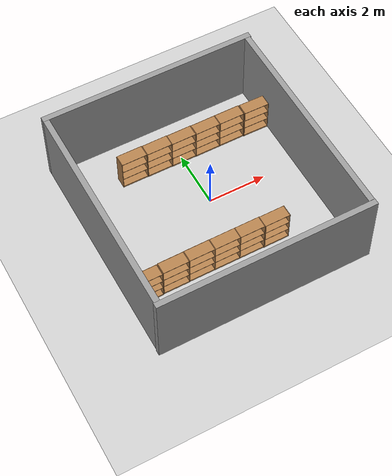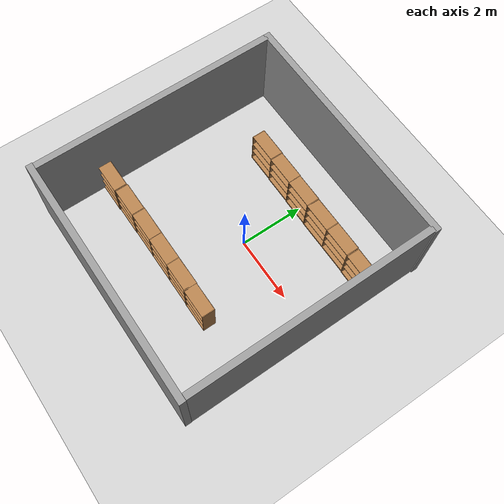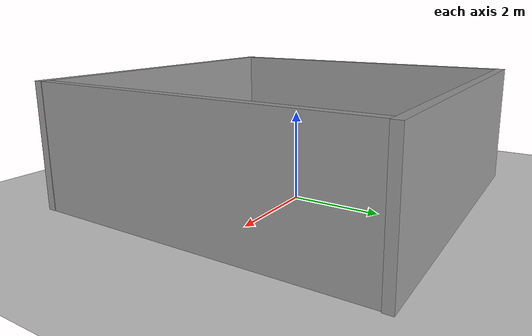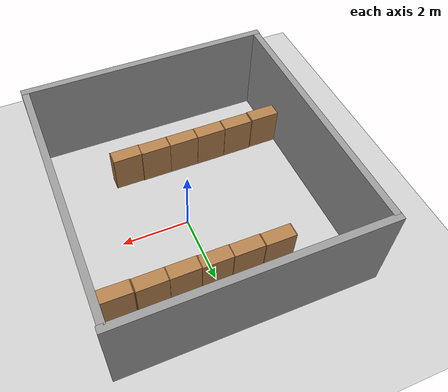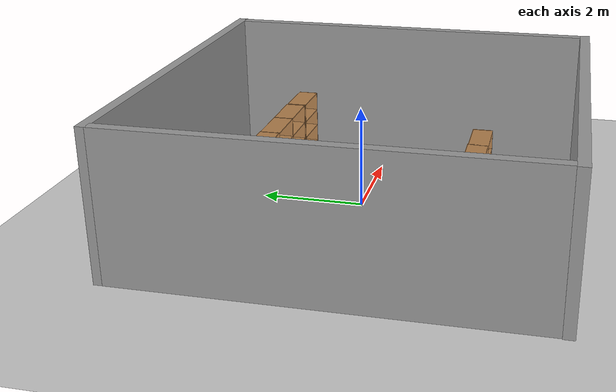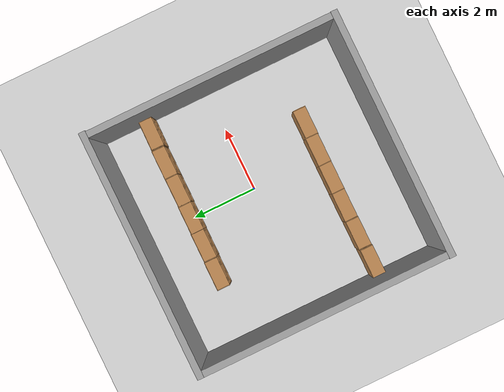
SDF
<sdf version="1.7">
 <world name="default">
  <scene><ambient>0.4 0.4 0.4 1</ambient><background>0.7 0.7 0.7 1</background><shadows>1</shadows></scene>
  <light name="sun" type="directional">
   <pose>0 0 10 0 -0 0</pose>
   <diffuse>0.8 0.8 0.8 1</diffuse>
   <specular>0.2 0.2 0.2 1</specular>
   <attenuation>
    <range>1000</range>
    <constant>0.9</constant>
    <linear>0.01</linear>
    <quadratic>0.001</quadratic>
   </attenuation>
   <direction>-0.5 0.1 -0.9</direction>
   <spot><inner_angle>0</inner_angle><outer_angle>0</outer_angle><falloff>0</falloff></spot>
  </light>
  <model name="ground_plane">
   <static>1</static>
   <link name="link">
    <collision name="collision">
     <geometry><plane><normal>0 0 1</normal><size>100 100</size></plane></geometry>
     <surface>
      <contact><collide_bitmask>65535</collide_bitmask></contact>
      <friction><ode><mu>100</mu><mu2>50</mu2></ode></friction>
     </surface>
    </collision>
    <visual name="visual">
     <cast_shadows>0</cast_shadows>
     <geometry><plane><normal>0 0 1</normal><size>100 100</size></plane></geometry>
     <material>
      <script><uri>file://media/materials/scripts/gazebo.material</uri><name>Gazebo/Grey</name></script>
     </material>
    </visual>
   </link>
  </model>
  <physics type="ode">
   <real_time_update_rate>1000</real_time_update_rate>
   <max_step_size>0.001</max_step_size>
   <real_time_factor>1</real_time_factor>
   <ode>
    <solver>
     <type>quick</type>
     <iters>150</iters>
     <precon_iters>0</precon_iters>
     <sor>1.4</sor>
     <use_dynamic_moi_rescaling>1</use_dynamic_moi_rescaling>
    </solver>
    <constraints>
     <cfm>1e-05</cfm>
     <erp>0.2</erp>
     <contact_max_correcting_vel>2000</contact_max_correcting_vel>
     <contact_surface_layer>0.01</contact_surface_layer>
    </constraints>
   </ode>
  </physics>
  <gravity>0 0 -9.8</gravity>
  <magnetic_field>6e-06 2.3e-05 -4.2e-05</magnetic_field>
  <atmosphere type="adiabatic"/>
  <spherical_coordinates>
   <surface_model>EARTH_WGS84</surface_model>
   <latitude_deg>0</latitude_deg>
   <longitude_deg>0</longitude_deg>
   <elevation>0</elevation>
   <heading_deg>0</heading_deg>
  </spherical_coordinates>
  <model name="grey_wall">
   <static>1</static>
   <link name="link">
    <pose>0 0 1.4 0 -0 0</pose>
    <collision name="collision"><geometry><box><size>7.5 0.2 2.8</size></box></geometry></collision>
    <visual name="visual">
     <cast_shadows>0</cast_shadows>
     <geometry><box><size>7.5 0.2 2.8</size></box></geometry>
     <material>
      <script>
       <uri>model://grey_wall/materials/scripts</uri>
       <uri>model://grey_wall/materials/textures</uri>
       <name>vrc/grey_wall</name>
      </script>
     </material>
    </visual>
   </link>
   <pose>-0.331436 -4.1134 0 0 -0 0</pose>
  </model>
  <model name="grey_wall_0">
   <static>1</static>
   <link name="link">
    <pose>0 0 1.4 0 -0 0</pose>
    <collision name="collision"><geometry><box><size>7.5 0.2 2.8</size></box></geometry></collision>
    <visual name="visual">
     <cast_shadows>0</cast_shadows>
     <geometry><box><size>7.5 0.2 2.8</size></box></geometry>
     <material>
      <script>
       <uri>model://grey_wall/materials/scripts</uri>
       <uri>model://grey_wall/materials/textures</uri>
       <name>vrc/grey_wall</name>
      </script>
     </material>
    </visual>
   </link>
   <pose>-0.323069 3.54386 0 0 -0 0</pose>
  </model>
  <model name="grey_wall_1">
   <static>1</static>
   <link name="link">
    <pose>0 0 1.4 0 -0 0</pose>
    <collision name="collision"><geometry><box><size>7.5 0.2 2.8</size></box></geometry></collision>
    <visual name="visual">
     <cast_shadows>0</cast_shadows>
     <geometry><box><size>7.5 0.2 2.8</size></box></geometry>
     <material>
      <script>
       <uri>model://grey_wall/materials/scripts</uri>
       <uri>model://grey_wall/materials/textures</uri>
       <name>vrc/grey_wall</name>
      </script>
     </material>
    </visual>
   </link>
   <pose>-3.96793 -0.268224 0 0 0 -1.56896</pose>
  </model>
  <model name="grey_wall_1_clone">
   <static>1</static>
   <link name="link">
    <pose>0 0 1.4 0 -0 0</pose>
    <collision name="collision"><geometry><box><size>7.5 0.2 2.8</size></box></geometry></collision>
    <visual name="visual">
     <cast_shadows>0</cast_shadows>
     <geometry><box><size>7.5 0.2 2.8</size></box></geometry>
     <material>
      <script>
       <uri>model://grey_wall/materials/scripts</uri>
       <uri>model://grey_wall/materials/textures</uri>
       <name>vrc/grey_wall</name>
      </script>
     </material>
    </visual>
   </link>
   <pose>3.30277 -0.260481 0 0 0 -1.56896</pose>
  </model>
  <model name="bookshelf">
   <static>1</static>
   <link name="link">
    <inertial><mass>1</mass></inertial>
    <collision name="back">
     <pose>0 0.005 0.6 0 -0 0</pose>
     <geometry><box><size>0.9 0.01 1.2</size></box></geometry>
    </collision>
    <visual name="visual1">
     <pose>0 0.005 0.6 0 -0 0</pose>
     <geometry><box><size>0.9 0.01 1.2</size></box></geometry>
     <material>
      <script><uri>file://media/materials/scripts/gazebo.material</uri><name>Gazebo/Wood</name></script>
     </material>
    </visual>
    <collision name="left_side">
     <pose>0.45 -0.195 0.6 0 -0 0</pose>
     <geometry><box><size>0.02 0.4 1.2</size></box></geometry>
    </collision>
    <visual name="visual2">
     <pose>0.45 -0.195 0.6 0 -0 0</pose>
     <geometry><box><size>0.02 0.4 1.2</size></box></geometry>
     <material>
      <script><uri>file://media/materials/scripts/gazebo.material</uri><name>Gazebo/Wood</name></script>
     </material>
    </visual>
    <collision name="right_side">
     <pose>-0.45 -0.195 0.6 0 -0 0</pose>
     <geometry><box><size>0.02 0.4 1.2</size></box></geometry>
    </collision>
    <visual name="visual3">
     <pose>-0.45 -0.195 0.6 0 -0 0</pose>
     <geometry><box><size>0.02 0.4 1.2</size></box></geometry>
     <material>
      <script><uri>file://media/materials/scripts/gazebo.material</uri><name>Gazebo/Wood</name></script>
     </material>
    </visual>
    <collision name="bottom">
     <pose>0 -0.195 0.03 0 -0 0</pose>
     <geometry><box><size>0.88 0.4 0.06</size></box></geometry>
    </collision>
    <visual name="visual4">
     <pose>0 -0.195 0.03 0 -0 0</pose>
     <geometry><box><size>0.88 0.4 0.06</size></box></geometry>
     <material>
      <script><uri>file://media/materials/scripts/gazebo.material</uri><name>Gazebo/Wood</name></script>
     </material>
    </visual>
    <collision name="top">
     <pose>0 -0.195 1.19 0 -0 0</pose>
     <geometry><box><size>0.88 0.4 0.02</size></box></geometry>
    </collision>
    <visual name="visual5">
     <pose>0 -0.195 1.19 0 -0 0</pose>
     <geometry><box><size>0.88 0.4 0.02</size></box></geometry>
     <material>
      <script><uri>file://media/materials/scripts/gazebo.material</uri><name>Gazebo/Wood</name></script>
     </material>
    </visual>
    <collision name="low_shelf">
     <pose>0 -0.195 0.43 0 -0 0</pose>
     <geometry><box><size>0.88 0.4 0.02</size></box></geometry>
    </collision>
    <visual name="visual6">
     <pose>0 -0.195 0.43 0 -0 0</pose>
     <geometry><box><size>0.88 0.4 0.02</size></box></geometry>
     <material>
      <script><uri>file://media/materials/scripts/gazebo.material</uri><name>Gazebo/Wood</name></script>
     </material>
    </visual>
    <collision name="high_shelf">
     <pose>0 -0.195 0.8 0 -0 0</pose>
     <geometry><box><size>0.88 0.4 0.02</size></box></geometry>
    </collision>
    <visual name="visual7">
     <pose>0 -0.195 0.8 0 -0 0</pose>
     <geometry><box><size>0.88 0.4 0.02</size></box></geometry>
     <material>
      <script><uri>file://media/materials/scripts/gazebo.material</uri><name>Gazebo/Wood</name></script>
     </material>
    </visual>
   </link>
   <pose>-3.42642 -2.01933 0 0 -0 0</pose>
  </model>
  <model name="bookshelf_clone">
   <static>1</static>
   <link name="link">
    <inertial><mass>1</mass></inertial>
    <collision name="back">
     <pose>0 0.005 0.6 0 -0 0</pose>
     <geometry><box><size>0.9 0.01 1.2</size></box></geometry>
    </collision>
    <visual name="visual1">
     <pose>0 0.005 0.6 0 -0 0</pose>
     <geometry><box><size>0.9 0.01 1.2</size></box></geometry>
     <material>
      <script><uri>file://media/materials/scripts/gazebo.material</uri><name>Gazebo/Wood</name></script>
     </material>
    </visual>
    <collision name="left_side">
     <pose>0.45 -0.195 0.6 0 -0 0</pose>
     <geometry><box><size>0.02 0.4 1.2</size></box></geometry>
    </collision>
    <visual name="visual2">
     <pose>0.45 -0.195 0.6 0 -0 0</pose>
     <geometry><box><size>0.02 0.4 1.2</size></box></geometry>
     <material>
      <script><uri>file://media/materials/scripts/gazebo.material</uri><name>Gazebo/Wood</name></script>
     </material>
    </visual>
    <collision name="right_side">
     <pose>-0.45 -0.195 0.6 0 -0 0</pose>
     <geometry><box><size>0.02 0.4 1.2</size></box></geometry>
    </collision>
    <visual name="visual3">
     <pose>-0.45 -0.195 0.6 0 -0 0</pose>
     <geometry><box><size>0.02 0.4 1.2</size></box></geometry>
     <material>
      <script><uri>file://media/materials/scripts/gazebo.material</uri><name>Gazebo/Wood</name></script>
     </material>
    </visual>
    <collision name="bottom">
     <pose>0 -0.195 0.03 0 -0 0</pose>
     <geometry><box><size>0.88 0.4 0.06</size></box></geometry>
    </collision>
    <visual name="visual4">
     <pose>0 -0.195 0.03 0 -0 0</pose>
     <geometry><box><size>0.88 0.4 0.06</size></box></geometry>
     <material>
      <script><uri>file://media/materials/scripts/gazebo.material</uri><name>Gazebo/Wood</name></script>
     </material>
    </visual>
    <collision name="top">
     <pose>0 -0.195 1.19 0 -0 0</pose>
     <geometry><box><size>0.88 0.4 0.02</size></box></geometry>
    </collision>
    <visual name="visual5">
     <pose>0 -0.195 1.19 0 -0 0</pose>
     <geometry><box><size>0.88 0.4 0.02</size></box></geometry>
     <material>
      <script><uri>file://media/materials/scripts/gazebo.material</uri><name>Gazebo/Wood</name></script>
     </material>
    </visual>
    <collision name="low_shelf">
     <pose>0 -0.195 0.43 0 -0 0</pose>
     <geometry><box><size>0.88 0.4 0.02</size></box></geometry>
    </collision>
    <visual name="visual6">
     <pose>0 -0.195 0.43 0 -0 0</pose>
     <geometry><box><size>0.88 0.4 0.02</size></box></geometry>
     <material>
      <script><uri>file://media/materials/scripts/gazebo.material</uri><name>Gazebo/Wood</name></script>
     </material>
    </visual>
    <collision name="high_shelf">
     <pose>0 -0.195 0.8 0 -0 0</pose>
     <geometry><box><size>0.88 0.4 0.02</size></box></geometry>
    </collision>
    <visual name="visual7">
     <pose>0 -0.195 0.8 0 -0 0</pose>
     <geometry><box><size>0.88 0.4 0.02</size></box></geometry>
     <material>
      <script><uri>file://media/materials/scripts/gazebo.material</uri><name>Gazebo/Wood</name></script>
     </material>
    </visual>
   </link>
   <pose>-2.49846 -2.00086 0 0 -0 0</pose>
  </model>
  <model name="bookshelf_clone_0">
   <static>1</static>
   <link name="link">
    <inertial><mass>1</mass></inertial>
    <collision name="back">
     <pose>0 0.005 0.6 0 -0 0</pose>
     <geometry><box><size>0.9 0.01 1.2</size></box></geometry>
    </collision>
    <visual name="visual1">
     <pose>0 0.005 0.6 0 -0 0</pose>
     <geometry><box><size>0.9 0.01 1.2</size></box></geometry>
     <material>
      <script><uri>file://media/materials/scripts/gazebo.material</uri><name>Gazebo/Wood</name></script>
     </material>
    </visual>
    <collision name="left_side">
     <pose>0.45 -0.195 0.6 0 -0 0</pose>
     <geometry><box><size>0.02 0.4 1.2</size></box></geometry>
    </collision>
    <visual name="visual2">
     <pose>0.45 -0.195 0.6 0 -0 0</pose>
     <geometry><box><size>0.02 0.4 1.2</size></box></geometry>
     <material>
      <script><uri>file://media/materials/scripts/gazebo.material</uri><name>Gazebo/Wood</name></script>
     </material>
    </visual>
    <collision name="right_side">
     <pose>-0.45 -0.195 0.6 0 -0 0</pose>
     <geometry><box><size>0.02 0.4 1.2</size></box></geometry>
    </collision>
    <visual name="visual3">
     <pose>-0.45 -0.195 0.6 0 -0 0</pose>
     <geometry><box><size>0.02 0.4 1.2</size></box></geometry>
     <material>
      <script><uri>file://media/materials/scripts/gazebo.material</uri><name>Gazebo/Wood</name></script>
     </material>
    </visual>
    <collision name="bottom">
     <pose>0 -0.195 0.03 0 -0 0</pose>
     <geometry><box><size>0.88 0.4 0.06</size></box></geometry>
    </collision>
    <visual name="visual4">
     <pose>0 -0.195 0.03 0 -0 0</pose>
     <geometry><box><size>0.88 0.4 0.06</size></box></geometry>
     <material>
      <script><uri>file://media/materials/scripts/gazebo.material</uri><name>Gazebo/Wood</name></script>
     </material>
    </visual>
    <collision name="top">
     <pose>0 -0.195 1.19 0 -0 0</pose>
     <geometry><box><size>0.88 0.4 0.02</size></box></geometry>
    </collision>
    <visual name="visual5">
     <pose>0 -0.195 1.19 0 -0 0</pose>
     <geometry><box><size>0.88 0.4 0.02</size></box></geometry>
     <material>
      <script><uri>file://media/materials/scripts/gazebo.material</uri><name>Gazebo/Wood</name></script>
     </material>
    </visual>
    <collision name="low_shelf">
     <pose>0 -0.195 0.43 0 -0 0</pose>
     <geometry><box><size>0.88 0.4 0.02</size></box></geometry>
    </collision>
    <visual name="visual6">
     <pose>0 -0.195 0.43 0 -0 0</pose>
     <geometry><box><size>0.88 0.4 0.02</size></box></geometry>
     <material>
      <script><uri>file://media/materials/scripts/gazebo.material</uri><name>Gazebo/Wood</name></script>
     </material>
    </visual>
    <collision name="high_shelf">
     <pose>0 -0.195 0.8 0 -0 0</pose>
     <geometry><box><size>0.88 0.4 0.02</size></box></geometry>
    </collision>
    <visual name="visual7">
     <pose>0 -0.195 0.8 0 -0 0</pose>
     <geometry><box><size>0.88 0.4 0.02</size></box></geometry>
     <material>
      <script><uri>file://media/materials/scripts/gazebo.material</uri><name>Gazebo/Wood</name></script>
     </material>
    </visual>
   </link>
   <pose>-1.58809 -1.99355 0 0 -0 0</pose>
  </model>
  <model name="bookshelf_clone_1">
   <static>1</static>
   <link name="link">
    <inertial><mass>1</mass></inertial>
    <collision name="back">
     <pose>0 0.005 0.6 0 -0 0</pose>
     <geometry><box><size>0.9 0.01 1.2</size></box></geometry>
    </collision>
    <visual name="visual1">
     <pose>0 0.005 0.6 0 -0 0</pose>
     <geometry><box><size>0.9 0.01 1.2</size></box></geometry>
     <material>
      <script><uri>file://media/materials/scripts/gazebo.material</uri><name>Gazebo/Wood</name></script>
     </material>
    </visual>
    <collision name="left_side">
     <pose>0.45 -0.195 0.6 0 -0 0</pose>
     <geometry><box><size>0.02 0.4 1.2</size></box></geometry>
    </collision>
    <visual name="visual2">
     <pose>0.45 -0.195 0.6 0 -0 0</pose>
     <geometry><box><size>0.02 0.4 1.2</size></box></geometry>
     <material>
      <script><uri>file://media/materials/scripts/gazebo.material</uri><name>Gazebo/Wood</name></script>
     </material>
    </visual>
    <collision name="right_side">
     <pose>-0.45 -0.195 0.6 0 -0 0</pose>
     <geometry><box><size>0.02 0.4 1.2</size></box></geometry>
    </collision>
    <visual name="visual3">
     <pose>-0.45 -0.195 0.6 0 -0 0</pose>
     <geometry><box><size>0.02 0.4 1.2</size></box></geometry>
     <material>
      <script><uri>file://media/materials/scripts/gazebo.material</uri><name>Gazebo/Wood</name></script>
     </material>
    </visual>
    <collision name="bottom">
     <pose>0 -0.195 0.03 0 -0 0</pose>
     <geometry><box><size>0.88 0.4 0.06</size></box></geometry>
    </collision>
    <visual name="visual4">
     <pose>0 -0.195 0.03 0 -0 0</pose>
     <geometry><box><size>0.88 0.4 0.06</size></box></geometry>
     <material>
      <script><uri>file://media/materials/scripts/gazebo.material</uri><name>Gazebo/Wood</name></script>
     </material>
    </visual>
    <collision name="top">
     <pose>0 -0.195 1.19 0 -0 0</pose>
     <geometry><box><size>0.88 0.4 0.02</size></box></geometry>
    </collision>
    <visual name="visual5">
     <pose>0 -0.195 1.19 0 -0 0</pose>
     <geometry><box><size>0.88 0.4 0.02</size></box></geometry>
     <material>
      <script><uri>file://media/materials/scripts/gazebo.material</uri><name>Gazebo/Wood</name></script>
     </material>
    </visual>
    <collision name="low_shelf">
     <pose>0 -0.195 0.43 0 -0 0</pose>
     <geometry><box><size>0.88 0.4 0.02</size></box></geometry>
    </collision>
    <visual name="visual6">
     <pose>0 -0.195 0.43 0 -0 0</pose>
     <geometry><box><size>0.88 0.4 0.02</size></box></geometry>
     <material>
      <script><uri>file://media/materials/scripts/gazebo.material</uri><name>Gazebo/Wood</name></script>
     </material>
    </visual>
    <collision name="high_shelf">
     <pose>0 -0.195 0.8 0 -0 0</pose>
     <geometry><box><size>0.88 0.4 0.02</size></box></geometry>
    </collision>
    <visual name="visual7">
     <pose>0 -0.195 0.8 0 -0 0</pose>
     <geometry><box><size>0.88 0.4 0.02</size></box></geometry>
     <material>
      <script><uri>file://media/materials/scripts/gazebo.material</uri><name>Gazebo/Wood</name></script>
     </material>
    </visual>
   </link>
   <pose>-0.694954 -1.99694 0 0 -0 0</pose>
  </model>
  <model name="bookshelf_clone_2">
   <static>1</static>
   <link name="link">
    <inertial><mass>1</mass></inertial>
    <collision name="back">
     <pose>0 0.005 0.6 0 -0 0</pose>
     <geometry><box><size>0.9 0.01 1.2</size></box></geometry>
    </collision>
    <visual name="visual1">
     <pose>0 0.005 0.6 0 -0 0</pose>
     <geometry><box><size>0.9 0.01 1.2</size></box></geometry>
     <material>
      <script><uri>file://media/materials/scripts/gazebo.material</uri><name>Gazebo/Wood</name></script>
     </material>
    </visual>
    <collision name="left_side">
     <pose>0.45 -0.195 0.6 0 -0 0</pose>
     <geometry><box><size>0.02 0.4 1.2</size></box></geometry>
    </collision>
    <visual name="visual2">
     <pose>0.45 -0.195 0.6 0 -0 0</pose>
     <geometry><box><size>0.02 0.4 1.2</size></box></geometry>
     <material>
      <script><uri>file://media/materials/scripts/gazebo.material</uri><name>Gazebo/Wood</name></script>
     </material>
    </visual>
    <collision name="right_side">
     <pose>-0.45 -0.195 0.6 0 -0 0</pose>
     <geometry><box><size>0.02 0.4 1.2</size></box></geometry>
    </collision>
    <visual name="visual3">
     <pose>-0.45 -0.195 0.6 0 -0 0</pose>
     <geometry><box><size>0.02 0.4 1.2</size></box></geometry>
     <material>
      <script><uri>file://media/materials/scripts/gazebo.material</uri><name>Gazebo/Wood</name></script>
     </material>
    </visual>
    <collision name="bottom">
     <pose>0 -0.195 0.03 0 -0 0</pose>
     <geometry><box><size>0.88 0.4 0.06</size></box></geometry>
    </collision>
    <visual name="visual4">
     <pose>0 -0.195 0.03 0 -0 0</pose>
     <geometry><box><size>0.88 0.4 0.06</size></box></geometry>
     <material>
      <script><uri>file://media/materials/scripts/gazebo.material</uri><name>Gazebo/Wood</name></script>
     </material>
    </visual>
    <collision name="top">
     <pose>0 -0.195 1.19 0 -0 0</pose>
     <geometry><box><size>0.88 0.4 0.02</size></box></geometry>
    </collision>
    <visual name="visual5">
     <pose>0 -0.195 1.19 0 -0 0</pose>
     <geometry><box><size>0.88 0.4 0.02</size></box></geometry>
     <material>
      <script><uri>file://media/materials/scripts/gazebo.material</uri><name>Gazebo/Wood</name></script>
     </material>
    </visual>
    <collision name="low_shelf">
     <pose>0 -0.195 0.43 0 -0 0</pose>
     <geometry><box><size>0.88 0.4 0.02</size></box></geometry>
    </collision>
    <visual name="visual6">
     <pose>0 -0.195 0.43 0 -0 0</pose>
     <geometry><box><size>0.88 0.4 0.02</size></box></geometry>
     <material>
      <script><uri>file://media/materials/scripts/gazebo.material</uri><name>Gazebo/Wood</name></script>
     </material>
    </visual>
    <collision name="high_shelf">
     <pose>0 -0.195 0.8 0 -0 0</pose>
     <geometry><box><size>0.88 0.4 0.02</size></box></geometry>
    </collision>
    <visual name="visual7">
     <pose>0 -0.195 0.8 0 -0 0</pose>
     <geometry><box><size>0.88 0.4 0.02</size></box></geometry>
     <material>
      <script><uri>file://media/materials/scripts/gazebo.material</uri><name>Gazebo/Wood</name></script>
     </material>
    </visual>
   </link>
   <pose>0.203312 -1.99867 0 0 -0 0</pose>
  </model>
  <model name="bookshelf_clone_3">
   <static>1</static>
   <link name="link">
    <inertial><mass>1</mass></inertial>
    <collision name="back">
     <pose>0 0.005 0.6 0 -0 0</pose>
     <geometry><box><size>0.9 0.01 1.2</size></box></geometry>
    </collision>
    <visual name="visual1">
     <pose>0 0.005 0.6 0 -0 0</pose>
     <geometry><box><size>0.9 0.01 1.2</size></box></geometry>
     <material>
      <script><uri>file://media/materials/scripts/gazebo.material</uri><name>Gazebo/Wood</name></script>
     </material>
    </visual>
    <collision name="left_side">
     <pose>0.45 -0.195 0.6 0 -0 0</pose>
     <geometry><box><size>0.02 0.4 1.2</size></box></geometry>
    </collision>
    <visual name="visual2">
     <pose>0.45 -0.195 0.6 0 -0 0</pose>
     <geometry><box><size>0.02 0.4 1.2</size></box></geometry>
     <material>
      <script><uri>file://media/materials/scripts/gazebo.material</uri><name>Gazebo/Wood</name></script>
     </material>
    </visual>
    <collision name="right_side">
     <pose>-0.45 -0.195 0.6 0 -0 0</pose>
     <geometry><box><size>0.02 0.4 1.2</size></box></geometry>
    </collision>
    <visual name="visual3">
     <pose>-0.45 -0.195 0.6 0 -0 0</pose>
     <geometry><box><size>0.02 0.4 1.2</size></box></geometry>
     <material>
      <script><uri>file://media/materials/scripts/gazebo.material</uri><name>Gazebo/Wood</name></script>
     </material>
    </visual>
    <collision name="bottom">
     <pose>0 -0.195 0.03 0 -0 0</pose>
     <geometry><box><size>0.88 0.4 0.06</size></box></geometry>
    </collision>
    <visual name="visual4">
     <pose>0 -0.195 0.03 0 -0 0</pose>
     <geometry><box><size>0.88 0.4 0.06</size></box></geometry>
     <material>
      <script><uri>file://media/materials/scripts/gazebo.material</uri><name>Gazebo/Wood</name></script>
     </material>
    </visual>
    <collision name="top">
     <pose>0 -0.195 1.19 0 -0 0</pose>
     <geometry><box><size>0.88 0.4 0.02</size></box></geometry>
    </collision>
    <visual name="visual5">
     <pose>0 -0.195 1.19 0 -0 0</pose>
     <geometry><box><size>0.88 0.4 0.02</size></box></geometry>
     <material>
      <script><uri>file://media/materials/scripts/gazebo.material</uri><name>Gazebo/Wood</name></script>
     </material>
    </visual>
    <collision name="low_shelf">
     <pose>0 -0.195 0.43 0 -0 0</pose>
     <geometry><box><size>0.88 0.4 0.02</size></box></geometry>
    </collision>
    <visual name="visual6">
     <pose>0 -0.195 0.43 0 -0 0</pose>
     <geometry><box><size>0.88 0.4 0.02</size></box></geometry>
     <material>
      <script><uri>file://media/materials/scripts/gazebo.material</uri><name>Gazebo/Wood</name></script>
     </material>
    </visual>
    <collision name="high_shelf">
     <pose>0 -0.195 0.8 0 -0 0</pose>
     <geometry><box><size>0.88 0.4 0.02</size></box></geometry>
    </collision>
    <visual name="visual7">
     <pose>0 -0.195 0.8 0 -0 0</pose>
     <geometry><box><size>0.88 0.4 0.02</size></box></geometry>
     <material>
      <script><uri>file://media/materials/scripts/gazebo.material</uri><name>Gazebo/Wood</name></script>
     </material>
    </visual>
   </link>
   <pose>1.07279 -2.01098 0 0 -0 0</pose>
  </model>
  <model name="bookshelf_clone_4">
   <static>1</static>
   <link name="link">
    <inertial><mass>1</mass></inertial>
    <collision name="back">
     <pose>0 0.005 0.6 0 -0 0</pose>
     <geometry><box><size>0.9 0.01 1.2</size></box></geometry>
    </collision>
    <visual name="visual1">
     <pose>0 0.005 0.6 0 -0 0</pose>
     <geometry><box><size>0.9 0.01 1.2</size></box></geometry>
     <material>
      <script><uri>file://media/materials/scripts/gazebo.material</uri><name>Gazebo/Wood</name></script>
     </material>
    </visual>
    <collision name="left_side">
     <pose>0.45 -0.195 0.6 0 -0 0</pose>
     <geometry><box><size>0.02 0.4 1.2</size></box></geometry>
    </collision>
    <visual name="visual2">
     <pose>0.45 -0.195 0.6 0 -0 0</pose>
     <geometry><box><size>0.02 0.4 1.2</size></box></geometry>
     <material>
      <script><uri>file://media/materials/scripts/gazebo.material</uri><name>Gazebo/Wood</name></script>
     </material>
    </visual>
    <collision name="right_side">
     <pose>-0.45 -0.195 0.6 0 -0 0</pose>
     <geometry><box><size>0.02 0.4 1.2</size></box></geometry>
    </collision>
    <visual name="visual3">
     <pose>-0.45 -0.195 0.6 0 -0 0</pose>
     <geometry><box><size>0.02 0.4 1.2</size></box></geometry>
     <material>
      <script><uri>file://media/materials/scripts/gazebo.material</uri><name>Gazebo/Wood</name></script>
     </material>
    </visual>
    <collision name="bottom">
     <pose>0 -0.195 0.03 0 -0 0</pose>
     <geometry><box><size>0.88 0.4 0.06</size></box></geometry>
    </collision>
    <visual name="visual4">
     <pose>0 -0.195 0.03 0 -0 0</pose>
     <geometry><box><size>0.88 0.4 0.06</size></box></geometry>
     <material>
      <script><uri>file://media/materials/scripts/gazebo.material</uri><name>Gazebo/Wood</name></script>
     </material>
    </visual>
    <collision name="top">
     <pose>0 -0.195 1.19 0 -0 0</pose>
     <geometry><box><size>0.88 0.4 0.02</size></box></geometry>
    </collision>
    <visual name="visual5">
     <pose>0 -0.195 1.19 0 -0 0</pose>
     <geometry><box><size>0.88 0.4 0.02</size></box></geometry>
     <material>
      <script><uri>file://media/materials/scripts/gazebo.material</uri><name>Gazebo/Wood</name></script>
     </material>
    </visual>
    <collision name="low_shelf">
     <pose>0 -0.195 0.43 0 -0 0</pose>
     <geometry><box><size>0.88 0.4 0.02</size></box></geometry>
    </collision>
    <visual name="visual6">
     <pose>0 -0.195 0.43 0 -0 0</pose>
     <geometry><box><size>0.88 0.4 0.02</size></box></geometry>
     <material>
      <script><uri>file://media/materials/scripts/gazebo.material</uri><name>Gazebo/Wood</name></script>
     </material>
    </visual>
    <collision name="high_shelf">
     <pose>0 -0.195 0.8 0 -0 0</pose>
     <geometry><box><size>0.88 0.4 0.02</size></box></geometry>
    </collision>
    <visual name="visual7">
     <pose>0 -0.195 0.8 0 -0 0</pose>
     <geometry><box><size>0.88 0.4 0.02</size></box></geometry>
     <material>
      <script><uri>file://media/materials/scripts/gazebo.material</uri><name>Gazebo/Wood</name></script>
     </material>
    </visual>
   </link>
   <pose>2.75328 2.18049 0 0 -0 -0.015834</pose>
  </model>
  <model name="bookshelf_clone_5">
   <static>1</static>
   <link name="link">
    <inertial><mass>1</mass></inertial>
    <collision name="back">
     <pose>0 0.005 0.6 0 -0 0</pose>
     <geometry><box><size>0.9 0.01 1.2</size></box></geometry>
    </collision>
    <visual name="visual1">
     <pose>0 0.005 0.6 0 -0 0</pose>
     <geometry><box><size>0.9 0.01 1.2</size></box></geometry>
     <material>
      <script><uri>file://media/materials/scripts/gazebo.material</uri><name>Gazebo/Wood</name></script>
     </material>
    </visual>
    <collision name="left_side">
     <pose>0.45 -0.195 0.6 0 -0 0</pose>
     <geometry><box><size>0.02 0.4 1.2</size></box></geometry>
    </collision>
    <visual name="visual2">
     <pose>0.45 -0.195 0.6 0 -0 0</pose>
     <geometry><box><size>0.02 0.4 1.2</size></box></geometry>
     <material>
      <script><uri>file://media/materials/scripts/gazebo.material</uri><name>Gazebo/Wood</name></script>
     </material>
    </visual>
    <collision name="right_side">
     <pose>-0.45 -0.195 0.6 0 -0 0</pose>
     <geometry><box><size>0.02 0.4 1.2</size></box></geometry>
    </collision>
    <visual name="visual3">
     <pose>-0.45 -0.195 0.6 0 -0 0</pose>
     <geometry><box><size>0.02 0.4 1.2</size></box></geometry>
     <material>
      <script><uri>file://media/materials/scripts/gazebo.material</uri><name>Gazebo/Wood</name></script>
     </material>
    </visual>
    <collision name="bottom">
     <pose>0 -0.195 0.03 0 -0 0</pose>
     <geometry><box><size>0.88 0.4 0.06</size></box></geometry>
    </collision>
    <visual name="visual4">
     <pose>0 -0.195 0.03 0 -0 0</pose>
     <geometry><box><size>0.88 0.4 0.06</size></box></geometry>
     <material>
      <script><uri>file://media/materials/scripts/gazebo.material</uri><name>Gazebo/Wood</name></script>
     </material>
    </visual>
    <collision name="top">
     <pose>0 -0.195 1.19 0 -0 0</pose>
     <geometry><box><size>0.88 0.4 0.02</size></box></geometry>
    </collision>
    <visual name="visual5">
     <pose>0 -0.195 1.19 0 -0 0</pose>
     <geometry><box><size>0.88 0.4 0.02</size></box></geometry>
     <material>
      <script><uri>file://media/materials/scripts/gazebo.material</uri><name>Gazebo/Wood</name></script>
     </material>
    </visual>
    <collision name="low_shelf">
     <pose>0 -0.195 0.43 0 -0 0</pose>
     <geometry><box><size>0.88 0.4 0.02</size></box></geometry>
    </collision>
    <visual name="visual6">
     <pose>0 -0.195 0.43 0 -0 0</pose>
     <geometry><box><size>0.88 0.4 0.02</size></box></geometry>
     <material>
      <script><uri>file://media/materials/scripts/gazebo.material</uri><name>Gazebo/Wood</name></script>
     </material>
    </visual>
    <collision name="high_shelf">
     <pose>0 -0.195 0.8 0 -0 0</pose>
     <geometry><box><size>0.88 0.4 0.02</size></box></geometry>
    </collision>
    <visual name="visual7">
     <pose>0 -0.195 0.8 0 -0 0</pose>
     <geometry><box><size>0.88 0.4 0.02</size></box></geometry>
     <material>
      <script><uri>file://media/materials/scripts/gazebo.material</uri><name>Gazebo/Wood</name></script>
     </material>
    </visual>
   </link>
   <pose>1.82089 2.20164 0 0 -0 0</pose>
  </model>
  <model name="bookshelf_clone_6">
   <static>1</static>
   <link name="link">
    <inertial><mass>1</mass></inertial>
    <collision name="back">
     <pose>0 0.005 0.6 0 -0 0</pose>
     <geometry><box><size>0.9 0.01 1.2</size></box></geometry>
    </collision>
    <visual name="visual1">
     <pose>0 0.005 0.6 0 -0 0</pose>
     <geometry><box><size>0.9 0.01 1.2</size></box></geometry>
     <material>
      <script><uri>file://media/materials/scripts/gazebo.material</uri><name>Gazebo/Wood</name></script>
     </material>
    </visual>
    <collision name="left_side">
     <pose>0.45 -0.195 0.6 0 -0 0</pose>
     <geometry><box><size>0.02 0.4 1.2</size></box></geometry>
    </collision>
    <visual name="visual2">
     <pose>0.45 -0.195 0.6 0 -0 0</pose>
     <geometry><box><size>0.02 0.4 1.2</size></box></geometry>
     <material>
      <script><uri>file://media/materials/scripts/gazebo.material</uri><name>Gazebo/Wood</name></script>
     </material>
    </visual>
    <collision name="right_side">
     <pose>-0.45 -0.195 0.6 0 -0 0</pose>
     <geometry><box><size>0.02 0.4 1.2</size></box></geometry>
    </collision>
    <visual name="visual3">
     <pose>-0.45 -0.195 0.6 0 -0 0</pose>
     <geometry><box><size>0.02 0.4 1.2</size></box></geometry>
     <material>
      <script><uri>file://media/materials/scripts/gazebo.material</uri><name>Gazebo/Wood</name></script>
     </material>
    </visual>
    <collision name="bottom">
     <pose>0 -0.195 0.03 0 -0 0</pose>
     <geometry><box><size>0.88 0.4 0.06</size></box></geometry>
    </collision>
    <visual name="visual4">
     <pose>0 -0.195 0.03 0 -0 0</pose>
     <geometry><box><size>0.88 0.4 0.06</size></box></geometry>
     <material>
      <script><uri>file://media/materials/scripts/gazebo.material</uri><name>Gazebo/Wood</name></script>
     </material>
    </visual>
    <collision name="top">
     <pose>0 -0.195 1.19 0 -0 0</pose>
     <geometry><box><size>0.88 0.4 0.02</size></box></geometry>
    </collision>
    <visual name="visual5">
     <pose>0 -0.195 1.19 0 -0 0</pose>
     <geometry><box><size>0.88 0.4 0.02</size></box></geometry>
     <material>
      <script><uri>file://media/materials/scripts/gazebo.material</uri><name>Gazebo/Wood</name></script>
     </material>
    </visual>
    <collision name="low_shelf">
     <pose>0 -0.195 0.43 0 -0 0</pose>
     <geometry><box><size>0.88 0.4 0.02</size></box></geometry>
    </collision>
    <visual name="visual6">
     <pose>0 -0.195 0.43 0 -0 0</pose>
     <geometry><box><size>0.88 0.4 0.02</size></box></geometry>
     <material>
      <script><uri>file://media/materials/scripts/gazebo.material</uri><name>Gazebo/Wood</name></script>
     </material>
    </visual>
    <collision name="high_shelf">
     <pose>0 -0.195 0.8 0 -0 0</pose>
     <geometry><box><size>0.88 0.4 0.02</size></box></geometry>
    </collision>
    <visual name="visual7">
     <pose>0 -0.195 0.8 0 -0 0</pose>
     <geometry><box><size>0.88 0.4 0.02</size></box></geometry>
     <material>
      <script><uri>file://media/materials/scripts/gazebo.material</uri><name>Gazebo/Wood</name></script>
     </material>
    </visual>
   </link>
   <pose>0.916009 2.20195 0 0 -0 0</pose>
  </model>
  <model name="bookshelf_clone_6_clone">
   <static>1</static>
   <link name="link">
    <inertial><mass>1</mass></inertial>
    <collision name="back">
     <pose>0 0.005 0.6 0 -0 0</pose>
     <geometry><box><size>0.9 0.01 1.2</size></box></geometry>
    </collision>
    <visual name="visual1">
     <pose>0 0.005 0.6 0 -0 0</pose>
     <geometry><box><size>0.9 0.01 1.2</size></box></geometry>
     <material>
      <script><uri>file://media/materials/scripts/gazebo.material</uri><name>Gazebo/Wood</name></script>
     </material>
    </visual>
    <collision name="left_side">
     <pose>0.45 -0.195 0.6 0 -0 0</pose>
     <geometry><box><size>0.02 0.4 1.2</size></box></geometry>
    </collision>
    <visual name="visual2">
     <pose>0.45 -0.195 0.6 0 -0 0</pose>
     <geometry><box><size>0.02 0.4 1.2</size></box></geometry>
     <material>
      <script><uri>file://media/materials/scripts/gazebo.material</uri><name>Gazebo/Wood</name></script>
     </material>
    </visual>
    <collision name="right_side">
     <pose>-0.45 -0.195 0.6 0 -0 0</pose>
     <geometry><box><size>0.02 0.4 1.2</size></box></geometry>
    </collision>
    <visual name="visual3">
     <pose>-0.45 -0.195 0.6 0 -0 0</pose>
     <geometry><box><size>0.02 0.4 1.2</size></box></geometry>
     <material>
      <script><uri>file://media/materials/scripts/gazebo.material</uri><name>Gazebo/Wood</name></script>
     </material>
    </visual>
    <collision name="bottom">
     <pose>0 -0.195 0.03 0 -0 0</pose>
     <geometry><box><size>0.88 0.4 0.06</size></box></geometry>
    </collision>
    <visual name="visual4">
     <pose>0 -0.195 0.03 0 -0 0</pose>
     <geometry><box><size>0.88 0.4 0.06</size></box></geometry>
     <material>
      <script><uri>file://media/materials/scripts/gazebo.material</uri><name>Gazebo/Wood</name></script>
     </material>
    </visual>
    <collision name="top">
     <pose>0 -0.195 1.19 0 -0 0</pose>
     <geometry><box><size>0.88 0.4 0.02</size></box></geometry>
    </collision>
    <visual name="visual5">
     <pose>0 -0.195 1.19 0 -0 0</pose>
     <geometry><box><size>0.88 0.4 0.02</size></box></geometry>
     <material>
      <script><uri>file://media/materials/scripts/gazebo.material</uri><name>Gazebo/Wood</name></script>
     </material>
    </visual>
    <collision name="low_shelf">
     <pose>0 -0.195 0.43 0 -0 0</pose>
     <geometry><box><size>0.88 0.4 0.02</size></box></geometry>
    </collision>
    <visual name="visual6">
     <pose>0 -0.195 0.43 0 -0 0</pose>
     <geometry><box><size>0.88 0.4 0.02</size></box></geometry>
     <material>
      <script><uri>file://media/materials/scripts/gazebo.material</uri><name>Gazebo/Wood</name></script>
     </material>
    </visual>
    <collision name="high_shelf">
     <pose>0 -0.195 0.8 0 -0 0</pose>
     <geometry><box><size>0.88 0.4 0.02</size></box></geometry>
    </collision>
    <visual name="visual7">
     <pose>0 -0.195 0.8 0 -0 0</pose>
     <geometry><box><size>0.88 0.4 0.02</size></box></geometry>
     <material>
      <script><uri>file://media/materials/scripts/gazebo.material</uri><name>Gazebo/Wood</name></script>
     </material>
    </visual>
   </link>
   <pose>0.034148 2.21253 0 0 -0 0</pose>
  </model>
  <model name="bookshelf_clone_6_clone_0">
   <static>1</static>
   <link name="link">
    <inertial><mass>1</mass></inertial>
    <collision name="back">
     <pose>0 0.005 0.6 0 -0 0</pose>
     <geometry><box><size>0.9 0.01 1.2</size></box></geometry>
    </collision>
    <visual name="visual1">
     <pose>0 0.005 0.6 0 -0 0</pose>
     <geometry><box><size>0.9 0.01 1.2</size></box></geometry>
     <material>
      <script><uri>file://media/materials/scripts/gazebo.material</uri><name>Gazebo/Wood</name></script>
     </material>
    </visual>
    <collision name="left_side">
     <pose>0.45 -0.195 0.6 0 -0 0</pose>
     <geometry><box><size>0.02 0.4 1.2</size></box></geometry>
    </collision>
    <visual name="visual2">
     <pose>0.45 -0.195 0.6 0 -0 0</pose>
     <geometry><box><size>0.02 0.4 1.2</size></box></geometry>
     <material>
      <script><uri>file://media/materials/scripts/gazebo.material</uri><name>Gazebo/Wood</name></script>
     </material>
    </visual>
    <collision name="right_side">
     <pose>-0.45 -0.195 0.6 0 -0 0</pose>
     <geometry><box><size>0.02 0.4 1.2</size></box></geometry>
    </collision>
    <visual name="visual3">
     <pose>-0.45 -0.195 0.6 0 -0 0</pose>
     <geometry><box><size>0.02 0.4 1.2</size></box></geometry>
     <material>
      <script><uri>file://media/materials/scripts/gazebo.material</uri><name>Gazebo/Wood</name></script>
     </material>
    </visual>
    <collision name="bottom">
     <pose>0 -0.195 0.03 0 -0 0</pose>
     <geometry><box><size>0.88 0.4 0.06</size></box></geometry>
    </collision>
    <visual name="visual4">
     <pose>0 -0.195 0.03 0 -0 0</pose>
     <geometry><box><size>0.88 0.4 0.06</size></box></geometry>
     <material>
      <script><uri>file://media/materials/scripts/gazebo.material</uri><name>Gazebo/Wood</name></script>
     </material>
    </visual>
    <collision name="top">
     <pose>0 -0.195 1.19 0 -0 0</pose>
     <geometry><box><size>0.88 0.4 0.02</size></box></geometry>
    </collision>
    <visual name="visual5">
     <pose>0 -0.195 1.19 0 -0 0</pose>
     <geometry><box><size>0.88 0.4 0.02</size></box></geometry>
     <material>
      <script><uri>file://media/materials/scripts/gazebo.material</uri><name>Gazebo/Wood</name></script>
     </material>
    </visual>
    <collision name="low_shelf">
     <pose>0 -0.195 0.43 0 -0 0</pose>
     <geometry><box><size>0.88 0.4 0.02</size></box></geometry>
    </collision>
    <visual name="visual6">
     <pose>0 -0.195 0.43 0 -0 0</pose>
     <geometry><box><size>0.88 0.4 0.02</size></box></geometry>
     <material>
      <script><uri>file://media/materials/scripts/gazebo.material</uri><name>Gazebo/Wood</name></script>
     </material>
    </visual>
    <collision name="high_shelf">
     <pose>0 -0.195 0.8 0 -0 0</pose>
     <geometry><box><size>0.88 0.4 0.02</size></box></geometry>
    </collision>
    <visual name="visual7">
     <pose>0 -0.195 0.8 0 -0 0</pose>
     <geometry><box><size>0.88 0.4 0.02</size></box></geometry>
     <material>
      <script><uri>file://media/materials/scripts/gazebo.material</uri><name>Gazebo/Wood</name></script>
     </material>
    </visual>
   </link>
   <pose>-0.857018 2.22365 0 0 -0 0</pose>
  </model>
  <model name="bookshelf_clone_6_clone_1">
   <static>1</static>
   <link name="link">
    <inertial><mass>1</mass></inertial>
    <collision name="back">
     <pose>0 0.005 0.6 0 -0 0</pose>
     <geometry><box><size>0.9 0.01 1.2</size></box></geometry>
    </collision>
    <visual name="visual1">
     <pose>0 0.005 0.6 0 -0 0</pose>
     <geometry><box><size>0.9 0.01 1.2</size></box></geometry>
     <material>
      <script><uri>file://media/materials/scripts/gazebo.material</uri><name>Gazebo/Wood</name></script>
     </material>
    </visual>
    <collision name="left_side">
     <pose>0.45 -0.195 0.6 0 -0 0</pose>
     <geometry><box><size>0.02 0.4 1.2</size></box></geometry>
    </collision>
    <visual name="visual2">
     <pose>0.45 -0.195 0.6 0 -0 0</pose>
     <geometry><box><size>0.02 0.4 1.2</size></box></geometry>
     <material>
      <script><uri>file://media/materials/scripts/gazebo.material</uri><name>Gazebo/Wood</name></script>
     </material>
    </visual>
    <collision name="right_side">
     <pose>-0.45 -0.195 0.6 0 -0 0</pose>
     <geometry><box><size>0.02 0.4 1.2</size></box></geometry>
    </collision>
    <visual name="visual3">
     <pose>-0.45 -0.195 0.6 0 -0 0</pose>
     <geometry><box><size>0.02 0.4 1.2</size></box></geometry>
     <material>
      <script><uri>file://media/materials/scripts/gazebo.material</uri><name>Gazebo/Wood</name></script>
     </material>
    </visual>
    <collision name="bottom">
     <pose>0 -0.195 0.03 0 -0 0</pose>
     <geometry><box><size>0.88 0.4 0.06</size></box></geometry>
    </collision>
    <visual name="visual4">
     <pose>0 -0.195 0.03 0 -0 0</pose>
     <geometry><box><size>0.88 0.4 0.06</size></box></geometry>
     <material>
      <script><uri>file://media/materials/scripts/gazebo.material</uri><name>Gazebo/Wood</name></script>
     </material>
    </visual>
    <collision name="top">
     <pose>0 -0.195 1.19 0 -0 0</pose>
     <geometry><box><size>0.88 0.4 0.02</size></box></geometry>
    </collision>
    <visual name="visual5">
     <pose>0 -0.195 1.19 0 -0 0</pose>
     <geometry><box><size>0.88 0.4 0.02</size></box></geometry>
     <material>
      <script><uri>file://media/materials/scripts/gazebo.material</uri><name>Gazebo/Wood</name></script>
     </material>
    </visual>
    <collision name="low_shelf">
     <pose>0 -0.195 0.43 0 -0 0</pose>
     <geometry><box><size>0.88 0.4 0.02</size></box></geometry>
    </collision>
    <visual name="visual6">
     <pose>0 -0.195 0.43 0 -0 0</pose>
     <geometry><box><size>0.88 0.4 0.02</size></box></geometry>
     <material>
      <script><uri>file://media/materials/scripts/gazebo.material</uri><name>Gazebo/Wood</name></script>
     </material>
    </visual>
    <collision name="high_shelf">
     <pose>0 -0.195 0.8 0 -0 0</pose>
     <geometry><box><size>0.88 0.4 0.02</size></box></geometry>
    </collision>
    <visual name="visual7">
     <pose>0 -0.195 0.8 0 -0 0</pose>
     <geometry><box><size>0.88 0.4 0.02</size></box></geometry>
     <material>
      <script><uri>file://media/materials/scripts/gazebo.material</uri><name>Gazebo/Wood</name></script>
     </material>
    </visual>
   </link>
   <pose>-1.76808 2.23583 0 0 -0 0</pose>
  </model>
 </world>
</sdf>
